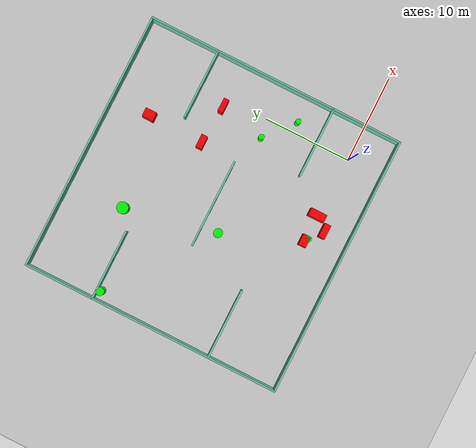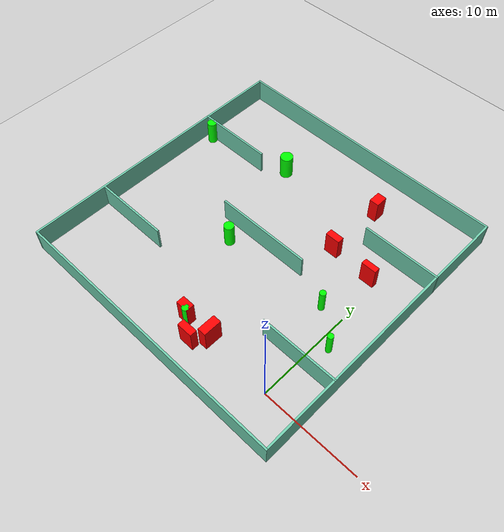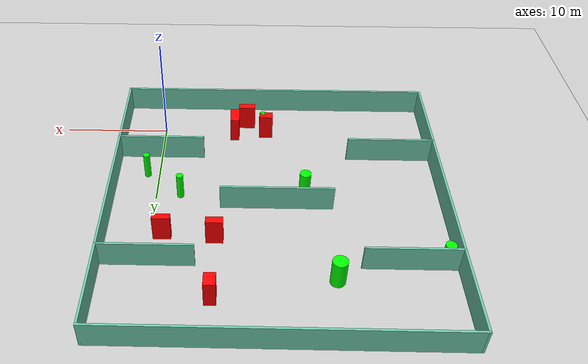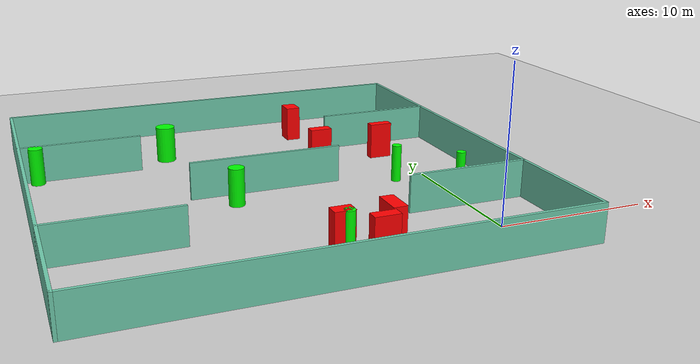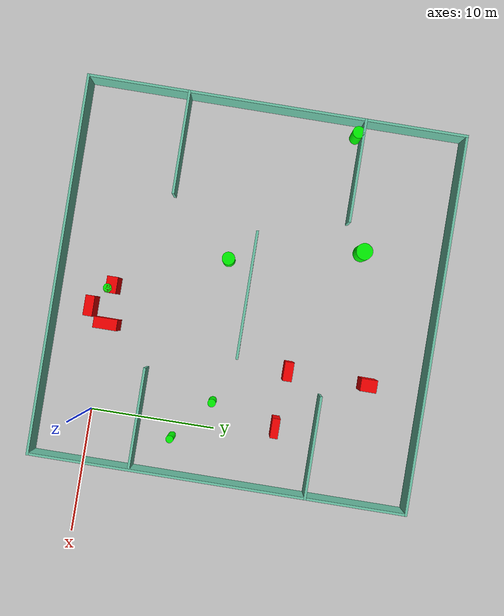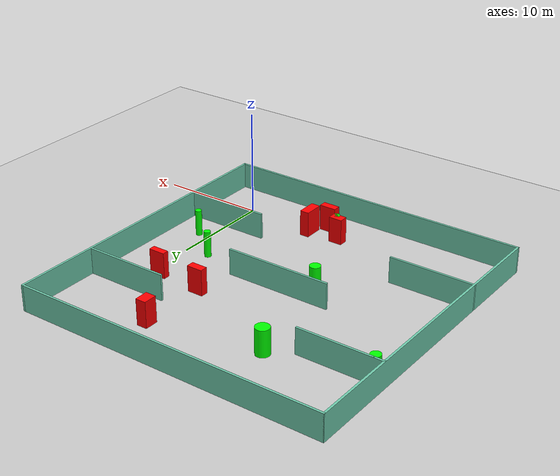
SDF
<sdf version="1.7">
 <world name="default">
  <light name="sun" type="directional">
   <pose>0 0 10 0 -0 0</pose>
   <diffuse>0.8 0.8 0.8 1</diffuse>
   <specular>0.2 0.2 0.2 1</specular>
   <attenuation>
    <range>1000</range>
    <constant>0.9</constant>
    <linear>0.01</linear>
    <quadratic>0.001</quadratic>
   </attenuation>
   <direction>-0.5 0.1 -0.9</direction>
   <spot><inner_angle>0</inner_angle><outer_angle>0</outer_angle><falloff>0</falloff></spot>
  </light>
  <model name="ground_plane">
   <static>1</static>
   <link name="link">
    <collision name="collision">
     <geometry><plane><normal>0 0 1</normal><size>100 100</size></plane></geometry>
     <surface>
      <contact><collide_bitmask>65535</collide_bitmask></contact>
      <friction><ode><mu>100</mu><mu2>50</mu2></ode></friction>
     </surface>
    </collision>
    <visual name="visual">
     <cast_shadows>0</cast_shadows>
     <geometry><plane><normal>0 0 1</normal><size>100 100</size></plane></geometry>
     <material>
      <script><uri>file://media/materials/scripts/gazebo.material</uri><name>Gazebo/Grey</name></script>
     </material>
    </visual>
   </link>
  </model>
  <gravity>0 0 -9.8</gravity>
  <magnetic_field>6e-06 2.3e-05 -4.2e-05</magnetic_field>
  <atmosphere type="adiabatic"/>
  <physics type="ode">
   <max_step_size>0.001</max_step_size>
   <real_time_factor>1</real_time_factor>
   <real_time_update_rate>1000</real_time_update_rate>
  </physics>
  <scene><ambient>0.4 0.4 0.4 1</ambient><background>0.7 0.7 0.7 1</background><shadows>1</shadows></scene>
  <spherical_coordinates>
   <surface_model>EARTH_WGS84</surface_model>
   <latitude_deg>0</latitude_deg>
   <longitude_deg>0</longitude_deg>
   <elevation>0</elevation>
   <heading_deg>0</heading_deg>
  </spherical_coordinates>
  <model name="my_base_walls">
   <link name="Wall_10">
    <collision name="Wall_10_Collision">
     <geometry><box><size>8.2 0.2 2.5</size></box></geometry>
     <pose>0 0 1.25 0 -0 0</pose>
    </collision>
    <visual name="Wall_10_Visual">
     <pose>0 0 1.25 0 -0 0</pose>
     <geometry><box><size>8.2 0.2 2.5</size></box></geometry>
     <material>
      <script><uri>file://media/materials/scripts/gazebo.material</uri><name>Gazebo/Grey</name></script>
      <ambient>0.435294 0.796078 0.67451 1</ambient>
     </material>
     <meta><layer>0</layer></meta>
    </visual>
    <pose>-11 -7 0 0 -0 0</pose>
   </link>
   <link name="Wall_12">
    <collision name="Wall_12_Collision">
     <geometry><box><size>8.2 0.2 2.5</size></box></geometry>
     <pose>0 0 1.25 0 -0 0</pose>
    </collision>
    <visual name="Wall_12_Visual">
     <pose>0 0 1.25 0 -0 0</pose>
     <geometry><box><size>8.2 0.2 2.5</size></box></geometry>
     <material>
      <script><uri>file://media/materials/scripts/gazebo.material</uri><name>Gazebo/Grey</name></script>
      <ambient>0.435294 0.796078 0.67451 1</ambient>
     </material>
     <meta><layer>0</layer></meta>
    </visual>
    <pose>-11 7 0 0 -0 0</pose>
   </link>
   <link name="Wall_14">
    <collision name="Wall_14_Collision">
     <geometry><box><size>8.2 0.2 2.5</size></box></geometry>
     <pose>0 0 1.25 0 -0 0</pose>
    </collision>
    <visual name="Wall_14_Visual">
     <pose>0 0 1.25 0 -0 0</pose>
     <geometry><box><size>8.2 0.2 2.5</size></box></geometry>
     <material>
      <script><uri>file://media/materials/scripts/gazebo.material</uri><name>Gazebo/Grey</name></script>
      <ambient>0.435294 0.796078 0.67451 1</ambient>
     </material>
     <meta><layer>0</layer></meta>
    </visual>
    <pose>11 7 0 0 -0 3.14159</pose>
   </link>
   <link name="Wall_16">
    <collision name="Wall_16_Collision">
     <geometry><box><size>10.2 0.2 2.5</size></box></geometry>
     <pose>0 0 1.25 0 -0 0</pose>
    </collision>
    <visual name="Wall_16_Visual">
     <pose>0 0 1.25 0 -0 0</pose>
     <geometry><box><size>10.2 0.2 2.5</size></box></geometry>
     <material>
      <script><uri>file://media/materials/scripts/gazebo.material</uri><name>Gazebo/Grey</name></script>
      <ambient>0.435294 0.796078 0.67451 1</ambient>
     </material>
     <meta><layer>0</layer></meta>
    </visual>
    <pose>0 0 0 0 -0 3.14159</pose>
   </link>
   <link name="Wall_2">
    <collision name="Wall_2_Collision">
     <geometry><box><size>30.2 0.2 2.5</size></box></geometry>
     <pose>0 0 1.25 0 -0 0</pose>
    </collision>
    <visual name="Wall_2_Visual">
     <pose>0 0 1.25 0 -0 0</pose>
     <geometry><box><size>30.2 0.2 2.5</size></box></geometry>
     <material>
      <script><uri>file://media/materials/scripts/gazebo.material</uri><name>Gazebo/Grey</name></script>
      <ambient>0.435294 0.796078 0.67451 1</ambient>
     </material>
     <meta><layer>0</layer></meta>
    </visual>
    <pose>0 -15 0 0 -0 3.14159</pose>
   </link>
   <link name="Wall_3">
    <collision name="Wall_3_Collision">
     <geometry><box><size>30.2 0.2 2.5</size></box></geometry>
     <pose>0 0 1.25 0 -0 0</pose>
    </collision>
    <visual name="Wall_3_Visual">
     <pose>0 0 1.25 0 -0 0</pose>
     <geometry><box><size>30.2 0.2 2.5</size></box></geometry>
     <material>
      <script><uri>file://media/materials/scripts/gazebo.material</uri><name>Gazebo/Grey</name></script>
      <ambient>0.435294 0.796078 0.67451 1</ambient>
     </material>
     <meta><layer>0</layer></meta>
    </visual>
    <pose>-15 0 0 0 -0 1.5708</pose>
   </link>
   <link name="Wall_4">
    <collision name="Wall_4_Collision">
     <geometry><box><size>30.2 0.2 2.5</size></box></geometry>
     <pose>0 0 1.25 0 -0 0</pose>
    </collision>
    <visual name="Wall_4_Visual">
     <pose>0 0 1.25 0 -0 0</pose>
     <geometry><box><size>30.2 0.2 2.5</size></box></geometry>
     <material>
      <script><uri>file://media/materials/scripts/gazebo.material</uri><name>Gazebo/Grey</name></script>
      <ambient>0.435294 0.796078 0.67451 1</ambient>
     </material>
     <meta><layer>0</layer></meta>
    </visual>
    <pose>0 15 0 0 -0 0</pose>
   </link>
   <link name="Wall_6">
    <collision name="Wall_6_Collision">
     <geometry><box><size>30.2 0.2 2.5</size></box></geometry>
     <pose>0 0 1.25 0 -0 0</pose>
    </collision>
    <visual name="Wall_6_Visual">
     <pose>0 0 1.25 0 -0 0</pose>
     <geometry><box><size>30.2 0.2 2.5</size></box></geometry>
     <material>
      <script><uri>file://media/materials/scripts/gazebo.material</uri><name>Gazebo/Grey</name></script>
      <ambient>0.435294 0.796078 0.67451 1</ambient>
     </material>
     <meta><layer>0</layer></meta>
    </visual>
    <pose>15 0 0 0 -0 1.5708</pose>
   </link>
   <link name="Wall_8">
    <collision name="Wall_8_Collision">
     <geometry><box><size>8.2 0.2 2.5</size></box></geometry>
     <pose>0 0 1.25 0 -0 0</pose>
    </collision>
    <visual name="Wall_8_Visual">
     <pose>0 0 1.25 0 -0 0</pose>
     <geometry><box><size>8.2 0.2 2.5</size></box></geometry>
     <material>
      <script><uri>file://media/materials/scripts/gazebo.material</uri><name>Gazebo/Grey</name></script>
      <ambient>0.435294 0.796078 0.67451 1</ambient>
     </material>
     <meta><layer>0</layer></meta>
    </visual>
    <pose>11 -7 0 0 -0 3.14159</pose>
   </link>
   <static>1</static>
   <pose>-11 11 0 0 -0 0</pose>
  </model>
  <model name="cylinder1">
   <static>1</static>
   <link name="link">
    <inertial>
     <mass>1</mass>
     <inertia><ixx>0.5</ixx><ixy>0</ixy><ixz>0</ixz><iyy>0.5</iyy><iyz>0</iyz><izz>1</izz></inertia>
    </inertial>
    <collision name="collision">
     <geometry><cylinder><radius>0.5156108469725499</radius><length>2.5</length></cylinder></geometry>
    </collision>
    <visual name="visual">
     <geometry><cylinder><radius>0.5156108469725499</radius><length>2.5</length></cylinder></geometry>
     <material>
      <ambient>0 1 0 1</ambient>
      <diffuse>0 1 0 1</diffuse>
      <specular>0.1 0.1 0.1 1</specular>
      <emissive>0 0 0 0</emissive>
     </material>
    </visual>
   </link>
   <pose>-13.590335139126825 9.097558455711996 1.25 0 0 0</pose>
  </model>
  <model name="cylinder2">
   <static>1</static>
   <link name="link">
    <inertial>
     <mass>1</mass>
     <inertia><ixx>0.5</ixx><ixy>0</ixy><ixz>0</ixz><iyy>0.5</iyy><iyz>0</iyz><izz>1</izz></inertia>
    </inertial>
    <collision name="collision">
     <geometry><cylinder><radius>0.3179985253853175</radius><length>2.5</length></cylinder></geometry>
    </collision>
    <visual name="visual">
     <geometry><cylinder><radius>0.3179985253853175</radius><length>2.5</length></cylinder></geometry>
     <material>
      <ambient>0 1 0 1</ambient>
      <diffuse>0 1 0 1</diffuse>
      <specular>0.1 0.1 0.1 1</specular>
      <emissive>0 0 0 0</emissive>
     </material>
    </visual>
   </link>
   <pose>-2.2203463620670085 9.610946373485522 1.25 0 0 0</pose>
  </model>
  <model name="cylinder3">
   <static>1</static>
   <link name="link">
    <inertial>
     <mass>1</mass>
     <inertia><ixx>0.5</ixx><ixy>0</ixy><ixz>0</ixz><iyy>0.5</iyy><iyz>0</iyz><izz>1</izz></inertia>
    </inertial>
    <collision name="collision">
     <geometry><cylinder><radius>0.30148880739669315</radius><length>2.5</length></cylinder></geometry>
    </collision>
    <visual name="visual">
     <geometry><cylinder><radius>0.30148880739669315</radius><length>2.5</length></cylinder></geometry>
     <material>
      <ambient>0 1 0 1</ambient>
      <diffuse>0 1 0 1</diffuse>
      <specular>0.1 0.1 0.1 1</specular>
      <emissive>0 0 0 0</emissive>
     </material>
    </visual>
   </link>
   <pose>1.0959012189220196 6.8131126515033955 1.25 0 0 0</pose>
  </model>
  <model name="cylinder4">
   <static>1</static>
   <link name="link">
    <inertial>
     <mass>1</mass>
     <inertia><ixx>0.5</ixx><ixy>0</ixy><ixz>0</ixz><iyy>0.5</iyy><iyz>0</iyz><izz>1</izz></inertia>
    </inertial>
    <collision name="collision">
     <geometry><cylinder><radius>0.6586680531702938</radius><length>2.5</length></cylinder></geometry>
    </collision>
    <visual name="visual">
     <geometry><cylinder><radius>0.6586680531702938</radius><length>2.5</length></cylinder></geometry>
     <material>
      <ambient>0 1 0 1</ambient>
      <diffuse>0 1 0 1</diffuse>
      <specular>0.1 0.1 0.1 1</specular>
      <emissive>0 0 0 0</emissive>
     </material>
    </visual>
   </link>
   <pose>-15.822161750159385 19.523113350333997 1.25 0 0 0</pose>
  </model>
  <model name="cylinder5">
   <static>1</static>
   <link name="link">
    <inertial>
     <mass>1</mass>
     <inertia><ixx>0.5</ixx><ixy>0</ixy><ixz>0</ixz><iyy>0.5</iyy><iyz>0</iyz><izz>1</izz></inertia>
    </inertial>
    <collision name="collision">
     <geometry><cylinder><radius>0.34711452394467895</radius><length>2.5</length></cylinder></geometry>
    </collision>
    <visual name="visual">
     <geometry><cylinder><radius>0.34711452394467895</radius><length>2.5</length></cylinder></geometry>
     <material>
      <ambient>0 1 0 1</ambient>
      <diffuse>0 1 0 1</diffuse>
      <specular>0.1 0.1 0.1 1</specular>
      <emissive>0 0 0 0</emissive>
     </material>
    </visual>
   </link>
   <pose>-9.791759838056498 0.13624798641523306 1.25 0 0 0</pose>
  </model>
  <model name="cylinder6">
   <static>1</static>
   <link name="link">
    <inertial>
     <mass>1</mass>
     <inertia><ixx>0.5</ixx><ixy>0</ixy><ixz>0</ixz><iyy>0.5</iyy><iyz>0</iyz><izz>1</izz></inertia>
    </inertial>
    <collision name="collision">
     <geometry><cylinder><radius>0.4758018801018727</radius><length>2.5</length></cylinder></geometry>
    </collision>
    <visual name="visual">
     <geometry><cylinder><radius>0.4758018801018727</radius><length>2.5</length></cylinder></geometry>
     <material>
      <ambient>0 1 0 1</ambient>
      <diffuse>0 1 0 1</diffuse>
      <specular>0.1 0.1 0.1 1</specular>
      <emissive>0 0 0 0</emissive>
     </material>
    </visual>
   </link>
   <pose>-24.952320697500397 17.57808539253543 1.25 0 0 0</pose>
  </model>
  <model name="box1">
   <static>1</static>
   <link name="link">
    <inertial>
     <mass>1</mass>
     <inertia><ixx>0.083</ixx><ixy>0</ixy><ixz>0</ixz><iyy>0.083</iyy><iyz>0</iyz><izz>0.083</izz></inertia>
    </inertial>
    <collision name="collision">
     <geometry><box><size>1.003804663953622 1.2870397967066038 2.5</size></box></geometry>
    </collision>
    <visual name="visual">
     <geometry><box><size>1.003804663953622 1.2870397967066038 2.5</size></box></geometry>
     <material>
      <ambient>1 0 0 1</ambient>
      <diffuse>1 0 0 1</diffuse>
      <specular>0.1 0.1 0.1 1</specular>
      <emissive>0 0 0 0</emissive>
     </material>
    </visual>
    <sensor name="my_contact" type="contact">
     <contact><collision>box_collision</collision><topic>__default_topic__</topic></contact>
    </sensor>
   </link>
   <pose>-5.515761039300571 21.535644335675528 1.25 0 0 0</pose>
  </model>
  <model name="box2">
   <static>1</static>
   <link name="link">
    <inertial>
     <mass>1</mass>
     <inertia><ixx>0.083</ixx><ixy>0</ixy><ixz>0</ixz><iyy>0.083</iyy><iyz>0</iyz><izz>0.083</izz></inertia>
    </inertial>
    <collision name="collision">
     <geometry><box><size>1.6247358409944999 0.7240704068468047 2.5</size></box></geometry>
    </collision>
    <visual name="visual">
     <geometry><box><size>1.6247358409944999 0.7240704068468047 2.5</size></box></geometry>
     <material>
      <ambient>1 0 0 1</ambient>
      <diffuse>1 0 0 1</diffuse>
      <specular>0.1 0.1 0.1 1</specular>
      <emissive>0 0 0 0</emissive>
     </material>
    </visual>
    <sensor name="my_contact" type="contact">
     <contact><collision>box_collision</collision><topic>__default_topic__</topic></contact>
    </sensor>
   </link>
   <pose>-8.206502004702497 -1.0912099624490117 1.25 0 0 0</pose>
  </model>
  <model name="box3">
   <static>1</static>
   <link name="link">
    <inertial>
     <mass>1</mass>
     <inertia><ixx>0.083</ixx><ixy>0</ixy><ixz>0</ixz><iyy>0.083</iyy><iyz>0</iyz><izz>0.083</izz></inertia>
    </inertial>
    <collision name="collision">
     <geometry><box><size>1.3103668046077979 0.8590519002473587 2.5</size></box></geometry>
    </collision>
    <visual name="visual">
     <geometry><box><size>1.3103668046077979 0.8590519002473587 2.5</size></box></geometry>
     <material>
      <ambient>1 0 0 1</ambient>
      <diffuse>1 0 0 1</diffuse>
      <specular>0.1 0.1 0.1 1</specular>
      <emissive>0 0 0 0</emissive>
     </material>
    </visual>
    <sensor name="my_contact" type="contact">
     <contact><collision>box_collision</collision><topic>__default_topic__</topic></contact>
    </sensor>
   </link>
   <pose>-10.099606290550668 0.40237630416107883 1.25 0 0 0</pose>
  </model>
  <model name="box4">
   <static>1</static>
   <link name="link">
    <inertial>
     <mass>1</mass>
     <inertia><ixx>0.083</ixx><ixy>0</ixy><ixz>0</ixz><iyy>0.083</iyy><iyz>0</iyz><izz>0.083</izz></inertia>
    </inertial>
    <collision name="collision">
     <geometry><box><size>0.8829456793917321 1.8715060814786164 2.5</size></box></geometry>
    </collision>
    <visual name="visual">
     <geometry><box><size>0.8829456793917321 1.8715060814786164 2.5</size></box></geometry>
     <material>
      <ambient>1 0 0 1</ambient>
      <diffuse>1 0 0 1</diffuse>
      <specular>0.1 0.1 0.1 1</specular>
      <emissive>0 0 0 0</emissive>
     </material>
    </visual>
    <sensor name="my_contact" type="contact">
     <contact><collision>box_collision</collision><topic>__default_topic__</topic></contact>
    </sensor>
   </link>
   <pose>-7.012107712615666 0.3879832726722068 1.25 0 0 0</pose>
  </model>
  <model name="box5">
   <static>1</static>
   <link name="link">
    <inertial>
     <mass>1</mass>
     <inertia><ixx>0.083</ixx><ixy>0</ixy><ixz>0</ixz><iyy>0.083</iyy><iyz>0</iyz><izz>0.083</izz></inertia>
    </inertial>
    <collision name="collision">
     <geometry><box><size>1.5717089231117176 0.6158525813591076 2.5</size></box></geometry>
    </collision>
    <visual name="visual">
     <geometry><box><size>1.5717089231117176 0.6158525813591076 2.5</size></box></geometry>
     <material>
      <ambient>1 0 0 1</ambient>
      <diffuse>1 0 0 1</diffuse>
      <specular>0.1 0.1 0.1 1</specular>
      <emissive>0 0 0 0</emissive>
     </material>
    </visual>
    <sensor name="my_contact" type="contact">
     <contact><collision>box_collision</collision><topic>__default_topic__</topic></contact>
    </sensor>
   </link>
   <pose>-1.0460178743836863 14.828468299408136 1.25 0 0 0</pose>
  </model>
  <model name="box6">
   <static>1</static>
   <link name="link">
    <inertial>
     <mass>1</mass>
     <inertia><ixx>0.083</ixx><ixy>0</ixy><ixz>0</ixz><iyy>0.083</iyy><iyz>0</iyz><izz>0.083</izz></inertia>
    </inertial>
    <collision name="collision">
     <geometry><box><size>1.5128760908332202 0.7229398522233071 2.5</size></box></geometry>
    </collision>
    <visual name="visual">
     <geometry><box><size>1.5128760908332202 0.7229398522233071 2.5</size></box></geometry>
     <material>
      <ambient>1 0 0 1</ambient>
      <diffuse>1 0 0 1</diffuse>
      <specular>0.1 0.1 0.1 1</specular>
      <emissive>0 0 0 0</emissive>
     </material>
    </visual>
    <sensor name="my_contact" type="contact">
     <contact><collision>box_collision</collision><topic>__default_topic__</topic></contact>
    </sensor>
   </link>
   <pose>-5.594749555705253 15.145514936985265 1.25 0 0 0</pose>
  </model>
 </world>
</sdf>
